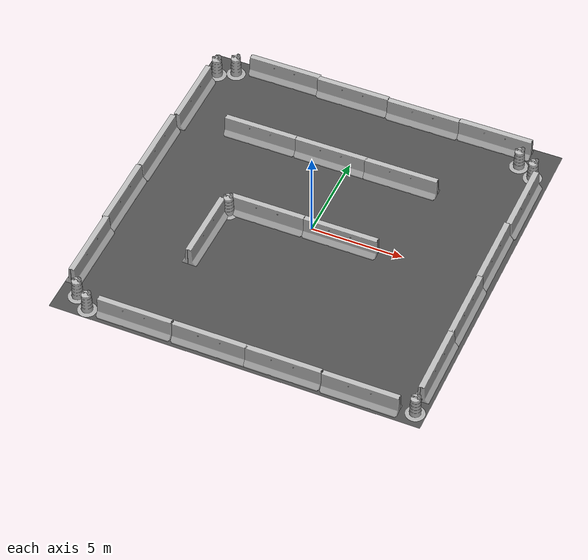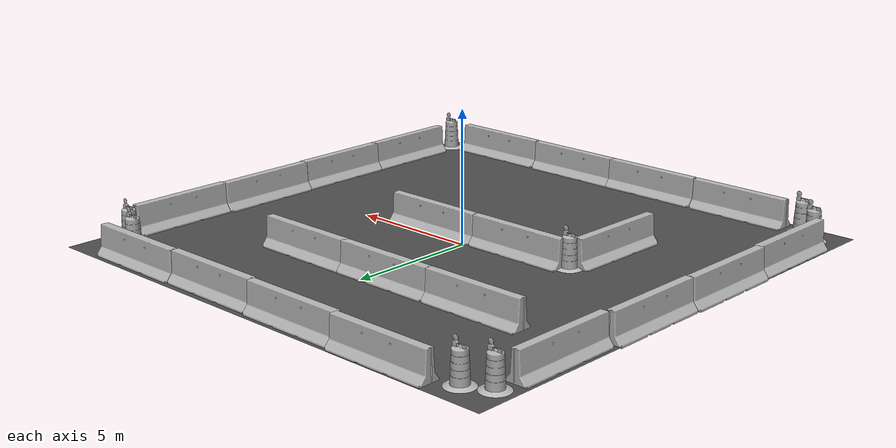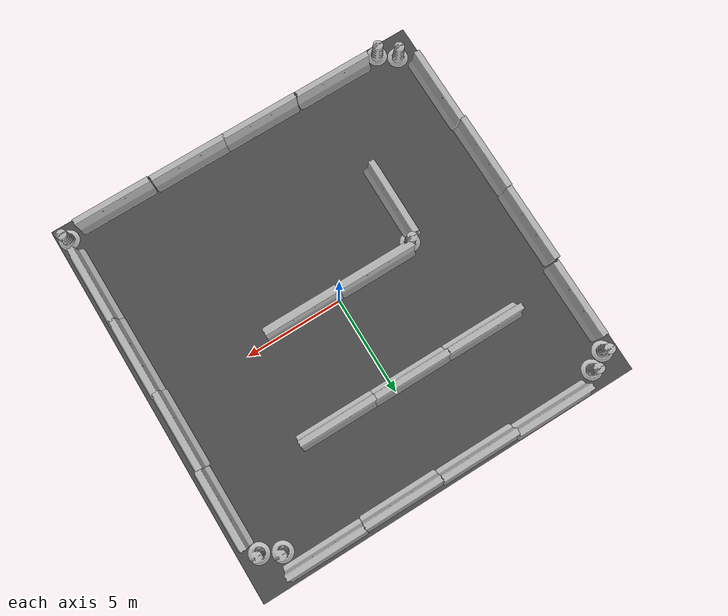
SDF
<sdf version="1.7">
 <world name="default">
  <light name="sun" type="directional">
   <pose>0 0 10 0 -0 0</pose>
   <diffuse>0.8 0.8 0.8 1</diffuse>
   <specular>0.2 0.2 0.2 1</specular>
   <attenuation>
    <range>1000</range>
    <constant>0.9</constant>
    <linear>0.01</linear>
    <quadratic>0.001</quadratic>
   </attenuation>
   <direction>-0.5 0.1 -0.9</direction>
   <spot><inner_angle>0</inner_angle><outer_angle>0</outer_angle><falloff>0</falloff></spot>
  </light>
  <gravity>0 0 -9.8</gravity>
  <magnetic_field>6e-06 2.3e-05 -4.2e-05</magnetic_field>
  <atmosphere type="adiabatic"/>
  <physics name="default_physics" default="0" type="ode">
   <max_step_size>0.001</max_step_size>
   <real_time_factor>1</real_time_factor>
   <real_time_update_rate>1000</real_time_update_rate>
  </physics>
  <scene><ambient>0.4 0.4 0.4 1</ambient><background>0.7 0.7 0.7 1</background><shadows>1</shadows></scene>
  <spherical_coordinates>
   <surface_model>EARTH_WGS84</surface_model>
   <latitude_deg>0</latitude_deg>
   <longitude_deg>0</longitude_deg>
   <elevation>0</elevation>
   <heading_deg>0</heading_deg>
  </spherical_coordinates>
  <model name="jersey_barrier">
   <static>1</static>
   <link name="link">
    <visual name="visual">
     <geometry><mesh><uri>model://jersey_barrier/meshes/jersey_barrier.dae</uri></mesh></geometry>
    </visual>
    <collision name="upright">
     <pose>0 0 0.5715 0 -0 0</pose>
     <geometry><box><size>4.06542 0.3063 1.143</size></box></geometry>
    </collision>
    <collision name="base">
     <pose>0 0 0.032258 0 -0 0</pose>
     <geometry><box><size>4.06542 0.8107 0.064516</size></box></geometry>
    </collision>
    <collision name="base2">
     <pose>0 0 0.1 0 -0 0</pose>
     <geometry><box><size>4.06542 0.65 0.1</size></box></geometry>
    </collision>
    <collision name="base3">
     <pose>0 0 0.2 0 -0 0</pose>
     <geometry><box><size>4.06542 0.5 0.1</size></box></geometry>
    </collision>
    <collision name="left-angle">
     <pose>0 -0.224 0.2401 0.9 -0 0</pose>
     <geometry><box><size>4.06542 0.5 0.064516</size></box></geometry>
    </collision>
    <collision name="right-angle">
     <pose>0 0.224 0.2401 -0.9 0 0</pose>
     <geometry><box><size>4.06542 0.5 0.064516</size></box></geometry>
    </collision>
   </link>
   <pose>-5.65677 9.4608 0 0 -0 0</pose>
  </model>
  <model name="jersey_barrier_clone">
   <static>1</static>
   <link name="link">
    <visual name="visual">
     <geometry><mesh><uri>model://jersey_barrier/meshes/jersey_barrier.dae</uri></mesh></geometry>
    </visual>
    <collision name="upright">
     <pose>0 0 0.5715 0 -0 0</pose>
     <geometry><box><size>4.06542 0.3063 1.143</size></box></geometry>
    </collision>
    <collision name="base">
     <pose>0 0 0.032258 0 -0 0</pose>
     <geometry><box><size>4.06542 0.8107 0.064516</size></box></geometry>
    </collision>
    <collision name="base2">
     <pose>0 0 0.1 0 -0 0</pose>
     <geometry><box><size>4.06542 0.65 0.1</size></box></geometry>
    </collision>
    <collision name="base3">
     <pose>0 0 0.2 0 -0 0</pose>
     <geometry><box><size>4.06542 0.5 0.1</size></box></geometry>
    </collision>
    <collision name="left-angle">
     <pose>0 -0.224 0.2401 0.9 -0 0</pose>
     <geometry><box><size>4.06542 0.5 0.064516</size></box></geometry>
    </collision>
    <collision name="right-angle">
     <pose>0 0.224 0.2401 -0.9 0 0</pose>
     <geometry><box><size>4.06542 0.5 0.064516</size></box></geometry>
    </collision>
   </link>
   <pose>-1.65987 9.36075 0 0 -0 0</pose>
  </model>
  <model name="jersey_barrier_clone_0">
   <static>1</static>
   <link name="link">
    <visual name="visual">
     <geometry><mesh><uri>model://jersey_barrier/meshes/jersey_barrier.dae</uri></mesh></geometry>
    </visual>
    <collision name="upright">
     <pose>0 0 0.5715 0 -0 0</pose>
     <geometry><box><size>4.06542 0.3063 1.143</size></box></geometry>
    </collision>
    <collision name="base">
     <pose>0 0 0.032258 0 -0 0</pose>
     <geometry><box><size>4.06542 0.8107 0.064516</size></box></geometry>
    </collision>
    <collision name="base2">
     <pose>0 0 0.1 0 -0 0</pose>
     <geometry><box><size>4.06542 0.65 0.1</size></box></geometry>
    </collision>
    <collision name="base3">
     <pose>0 0 0.2 0 -0 0</pose>
     <geometry><box><size>4.06542 0.5 0.1</size></box></geometry>
    </collision>
    <collision name="left-angle">
     <pose>0 -0.224 0.2401 0.9 -0 0</pose>
     <geometry><box><size>4.06542 0.5 0.064516</size></box></geometry>
    </collision>
    <collision name="right-angle">
     <pose>0 0.224 0.2401 -0.9 0 0</pose>
     <geometry><box><size>4.06542 0.5 0.064516</size></box></geometry>
    </collision>
   </link>
   <pose>2.39773 9.29085 0 0 -0 0</pose>
  </model>
  <model name="jersey_barrier_clone_1">
   <static>1</static>
   <link name="link">
    <visual name="visual">
     <geometry><mesh><uri>model://jersey_barrier/meshes/jersey_barrier.dae</uri></mesh></geometry>
    </visual>
    <collision name="upright">
     <pose>0 0 0.5715 0 -0 0</pose>
     <geometry><box><size>4.06542 0.3063 1.143</size></box></geometry>
    </collision>
    <collision name="base">
     <pose>0 0 0.032258 0 -0 0</pose>
     <geometry><box><size>4.06542 0.8107 0.064516</size></box></geometry>
    </collision>
    <collision name="base2">
     <pose>0 0 0.1 0 -0 0</pose>
     <geometry><box><size>4.06542 0.65 0.1</size></box></geometry>
    </collision>
    <collision name="base3">
     <pose>0 0 0.2 0 -0 0</pose>
     <geometry><box><size>4.06542 0.5 0.1</size></box></geometry>
    </collision>
    <collision name="left-angle">
     <pose>0 -0.224 0.2401 0.9 -0 0</pose>
     <geometry><box><size>4.06542 0.5 0.064516</size></box></geometry>
    </collision>
    <collision name="right-angle">
     <pose>0 0.224 0.2401 -0.9 0 0</pose>
     <geometry><box><size>4.06542 0.5 0.064516</size></box></geometry>
    </collision>
   </link>
   <pose>6.45464 9.33993 0 0 -0 0</pose>
  </model>
  <model name="jersey_barrier_clone_3">
   <static>1</static>
   <link name="link">
    <visual name="visual">
     <geometry><mesh><uri>model://jersey_barrier/meshes/jersey_barrier.dae</uri></mesh></geometry>
    </visual>
    <collision name="upright">
     <pose>0 0 0.5715 0 -0 0</pose>
     <geometry><box><size>4.06542 0.3063 1.143</size></box></geometry>
    </collision>
    <collision name="base">
     <pose>0 0 0.032258 0 -0 0</pose>
     <geometry><box><size>4.06542 0.8107 0.064516</size></box></geometry>
    </collision>
    <collision name="base2">
     <pose>0 0 0.1 0 -0 0</pose>
     <geometry><box><size>4.06542 0.65 0.1</size></box></geometry>
    </collision>
    <collision name="base3">
     <pose>0 0 0.2 0 -0 0</pose>
     <geometry><box><size>4.06542 0.5 0.1</size></box></geometry>
    </collision>
    <collision name="left-angle">
     <pose>0 -0.224 0.2401 0.9 -0 0</pose>
     <geometry><box><size>4.06542 0.5 0.064516</size></box></geometry>
    </collision>
    <collision name="right-angle">
     <pose>0 0.224 0.2401 -0.9 0 0</pose>
     <geometry><box><size>4.06542 0.5 0.064516</size></box></geometry>
    </collision>
   </link>
   <pose>9.44656 5.35522 0 0 0 -1.56865</pose>
  </model>
  <model name="jersey_barrier_clone_3_clone">
   <static>1</static>
   <link name="link">
    <visual name="visual">
     <geometry><mesh><uri>model://jersey_barrier/meshes/jersey_barrier.dae</uri></mesh></geometry>
    </visual>
    <collision name="upright">
     <pose>0 0 0.5715 0 -0 0</pose>
     <geometry><box><size>4.06542 0.3063 1.143</size></box></geometry>
    </collision>
    <collision name="base">
     <pose>0 0 0.032258 0 -0 0</pose>
     <geometry><box><size>4.06542 0.8107 0.064516</size></box></geometry>
    </collision>
    <collision name="base2">
     <pose>0 0 0.1 0 -0 0</pose>
     <geometry><box><size>4.06542 0.65 0.1</size></box></geometry>
    </collision>
    <collision name="base3">
     <pose>0 0 0.2 0 -0 0</pose>
     <geometry><box><size>4.06542 0.5 0.1</size></box></geometry>
    </collision>
    <collision name="left-angle">
     <pose>0 -0.224 0.2401 0.9 -0 0</pose>
     <geometry><box><size>4.06542 0.5 0.064516</size></box></geometry>
    </collision>
    <collision name="right-angle">
     <pose>0 0.224 0.2401 -0.9 0 0</pose>
     <geometry><box><size>4.06542 0.5 0.064516</size></box></geometry>
    </collision>
   </link>
   <pose>9.3727 1.33119 0 0 0 -1.56865</pose>
  </model>
  <model name="jersey_barrier_clone_3_clone_0">
   <static>1</static>
   <link name="link">
    <visual name="visual">
     <geometry><mesh><uri>model://jersey_barrier/meshes/jersey_barrier.dae</uri></mesh></geometry>
    </visual>
    <collision name="upright">
     <pose>0 0 0.5715 0 -0 0</pose>
     <geometry><box><size>4.06542 0.3063 1.143</size></box></geometry>
    </collision>
    <collision name="base">
     <pose>0 0 0.032258 0 -0 0</pose>
     <geometry><box><size>4.06542 0.8107 0.064516</size></box></geometry>
    </collision>
    <collision name="base2">
     <pose>0 0 0.1 0 -0 0</pose>
     <geometry><box><size>4.06542 0.65 0.1</size></box></geometry>
    </collision>
    <collision name="base3">
     <pose>0 0 0.2 0 -0 0</pose>
     <geometry><box><size>4.06542 0.5 0.1</size></box></geometry>
    </collision>
    <collision name="left-angle">
     <pose>0 -0.224 0.2401 0.9 -0 0</pose>
     <geometry><box><size>4.06542 0.5 0.064516</size></box></geometry>
    </collision>
    <collision name="right-angle">
     <pose>0 0.224 0.2401 -0.9 0 0</pose>
     <geometry><box><size>4.06542 0.5 0.064516</size></box></geometry>
    </collision>
   </link>
   <pose>9.4315 -2.6268 0 0 0 -1.56865</pose>
  </model>
  <model name="jersey_barrier_clone_3_clone_1">
   <static>1</static>
   <link name="link">
    <visual name="visual">
     <geometry><mesh><uri>model://jersey_barrier/meshes/jersey_barrier.dae</uri></mesh></geometry>
    </visual>
    <collision name="upright">
     <pose>0 0 0.5715 0 -0 0</pose>
     <geometry><box><size>4.06542 0.3063 1.143</size></box></geometry>
    </collision>
    <collision name="base">
     <pose>0 0 0.032258 0 -0 0</pose>
     <geometry><box><size>4.06542 0.8107 0.064516</size></box></geometry>
    </collision>
    <collision name="base2">
     <pose>0 0 0.1 0 -0 0</pose>
     <geometry><box><size>4.06542 0.65 0.1</size></box></geometry>
    </collision>
    <collision name="base3">
     <pose>0 0 0.2 0 -0 0</pose>
     <geometry><box><size>4.06542 0.5 0.1</size></box></geometry>
    </collision>
    <collision name="left-angle">
     <pose>0 -0.224 0.2401 0.9 -0 0</pose>
     <geometry><box><size>4.06542 0.5 0.064516</size></box></geometry>
    </collision>
    <collision name="right-angle">
     <pose>0 0.224 0.2401 -0.9 0 0</pose>
     <geometry><box><size>4.06542 0.5 0.064516</size></box></geometry>
    </collision>
   </link>
   <pose>9.44969 -6.53485 0 0 0 -1.56865</pose>
  </model>
  <model name="jersey_barrier_clone_2_clone">
   <static>1</static>
   <link name="link">
    <visual name="visual">
     <geometry><mesh><uri>model://jersey_barrier/meshes/jersey_barrier.dae</uri></mesh></geometry>
    </visual>
    <collision name="upright">
     <pose>0 0 0.5715 0 -0 0</pose>
     <geometry><box><size>4.06542 0.3063 1.143</size></box></geometry>
    </collision>
    <collision name="base">
     <pose>0 0 0.032258 0 -0 0</pose>
     <geometry><box><size>4.06542 0.8107 0.064516</size></box></geometry>
    </collision>
    <collision name="base2">
     <pose>0 0 0.1 0 -0 0</pose>
     <geometry><box><size>4.06542 0.65 0.1</size></box></geometry>
    </collision>
    <collision name="base3">
     <pose>0 0 0.2 0 -0 0</pose>
     <geometry><box><size>4.06542 0.5 0.1</size></box></geometry>
    </collision>
    <collision name="left-angle">
     <pose>0 -0.224 0.2401 0.9 -0 0</pose>
     <geometry><box><size>4.06542 0.5 0.064516</size></box></geometry>
    </collision>
    <collision name="right-angle">
     <pose>0 0.224 0.2401 -0.9 0 0</pose>
     <geometry><box><size>4.06542 0.5 0.064516</size></box></geometry>
    </collision>
   </link>
   <pose>6.70657 -9.54347 0 0 -0 0</pose>
  </model>
  <model name="jersey_barrier_clone_2_clone_0">
   <static>1</static>
   <link name="link">
    <visual name="visual">
     <geometry><mesh><uri>model://jersey_barrier/meshes/jersey_barrier.dae</uri></mesh></geometry>
    </visual>
    <collision name="upright">
     <pose>0 0 0.5715 0 -0 0</pose>
     <geometry><box><size>4.06542 0.3063 1.143</size></box></geometry>
    </collision>
    <collision name="base">
     <pose>0 0 0.032258 0 -0 0</pose>
     <geometry><box><size>4.06542 0.8107 0.064516</size></box></geometry>
    </collision>
    <collision name="base2">
     <pose>0 0 0.1 0 -0 0</pose>
     <geometry><box><size>4.06542 0.65 0.1</size></box></geometry>
    </collision>
    <collision name="base3">
     <pose>0 0 0.2 0 -0 0</pose>
     <geometry><box><size>4.06542 0.5 0.1</size></box></geometry>
    </collision>
    <collision name="left-angle">
     <pose>0 -0.224 0.2401 0.9 -0 0</pose>
     <geometry><box><size>4.06542 0.5 0.064516</size></box></geometry>
    </collision>
    <collision name="right-angle">
     <pose>0 0.224 0.2401 -0.9 0 0</pose>
     <geometry><box><size>4.06542 0.5 0.064516</size></box></geometry>
    </collision>
   </link>
   <pose>2.59616 -9.50928 0 0 -0 0</pose>
  </model>
  <model name="jersey_barrier_clone_2_clone_1">
   <static>1</static>
   <link name="link">
    <visual name="visual">
     <geometry><mesh><uri>model://jersey_barrier/meshes/jersey_barrier.dae</uri></mesh></geometry>
    </visual>
    <collision name="upright">
     <pose>0 0 0.5715 0 -0 0</pose>
     <geometry><box><size>4.06542 0.3063 1.143</size></box></geometry>
    </collision>
    <collision name="base">
     <pose>0 0 0.032258 0 -0 0</pose>
     <geometry><box><size>4.06542 0.8107 0.064516</size></box></geometry>
    </collision>
    <collision name="base2">
     <pose>0 0 0.1 0 -0 0</pose>
     <geometry><box><size>4.06542 0.65 0.1</size></box></geometry>
    </collision>
    <collision name="base3">
     <pose>0 0 0.2 0 -0 0</pose>
     <geometry><box><size>4.06542 0.5 0.1</size></box></geometry>
    </collision>
    <collision name="left-angle">
     <pose>0 -0.224 0.2401 0.9 -0 0</pose>
     <geometry><box><size>4.06542 0.5 0.064516</size></box></geometry>
    </collision>
    <collision name="right-angle">
     <pose>0 0.224 0.2401 -0.9 0 0</pose>
     <geometry><box><size>4.06542 0.5 0.064516</size></box></geometry>
    </collision>
   </link>
   <pose>-1.33414 -9.50852 0 0 -0 0</pose>
  </model>
  <model name="jersey_barrier_clone_2_clone_2">
   <static>1</static>
   <link name="link">
    <visual name="visual">
     <geometry><mesh><uri>model://jersey_barrier/meshes/jersey_barrier.dae</uri></mesh></geometry>
    </visual>
    <collision name="upright">
     <pose>0 0 0.5715 0 -0 0</pose>
     <geometry><box><size>4.06542 0.3063 1.143</size></box></geometry>
    </collision>
    <collision name="base">
     <pose>0 0 0.032258 0 -0 0</pose>
     <geometry><box><size>4.06542 0.8107 0.064516</size></box></geometry>
    </collision>
    <collision name="base2">
     <pose>0 0 0.1 0 -0 0</pose>
     <geometry><box><size>4.06542 0.65 0.1</size></box></geometry>
    </collision>
    <collision name="base3">
     <pose>0 0 0.2 0 -0 0</pose>
     <geometry><box><size>4.06542 0.5 0.1</size></box></geometry>
    </collision>
    <collision name="left-angle">
     <pose>0 -0.224 0.2401 0.9 -0 0</pose>
     <geometry><box><size>4.06542 0.5 0.064516</size></box></geometry>
    </collision>
    <collision name="right-angle">
     <pose>0 0.224 0.2401 -0.9 0 0</pose>
     <geometry><box><size>4.06542 0.5 0.064516</size></box></geometry>
    </collision>
   </link>
   <pose>-5.44605 -9.49634 0 0 -0 0</pose>
  </model>
  <model name="jersey_barrier_clone_3_clone_1_clone">
   <static>1</static>
   <link name="link">
    <visual name="visual">
     <geometry><mesh><uri>model://jersey_barrier/meshes/jersey_barrier.dae</uri></mesh></geometry>
    </visual>
    <collision name="upright">
     <pose>0 0 0.5715 0 -0 0</pose>
     <geometry><box><size>4.06542 0.3063 1.143</size></box></geometry>
    </collision>
    <collision name="base">
     <pose>0 0 0.032258 0 -0 0</pose>
     <geometry><box><size>4.06542 0.8107 0.064516</size></box></geometry>
    </collision>
    <collision name="base2">
     <pose>0 0 0.1 0 -0 0</pose>
     <geometry><box><size>4.06542 0.65 0.1</size></box></geometry>
    </collision>
    <collision name="base3">
     <pose>0 0 0.2 0 -0 0</pose>
     <geometry><box><size>4.06542 0.5 0.1</size></box></geometry>
    </collision>
    <collision name="left-angle">
     <pose>0 -0.224 0.2401 0.9 -0 0</pose>
     <geometry><box><size>4.06542 0.5 0.064516</size></box></geometry>
    </collision>
    <collision name="right-angle">
     <pose>0 0.224 0.2401 -0.9 0 0</pose>
     <geometry><box><size>4.06542 0.5 0.064516</size></box></geometry>
    </collision>
   </link>
   <pose>-9.54289 -6.33149 0 0 0 -1.56865</pose>
  </model>
  <model name="jersey_barrier_clone_3_clone_1_clone_0">
   <static>1</static>
   <link name="link">
    <visual name="visual">
     <geometry><mesh><uri>model://jersey_barrier/meshes/jersey_barrier.dae</uri></mesh></geometry>
    </visual>
    <collision name="upright">
     <pose>0 0 0.5715 0 -0 0</pose>
     <geometry><box><size>4.06542 0.3063 1.143</size></box></geometry>
    </collision>
    <collision name="base">
     <pose>0 0 0.032258 0 -0 0</pose>
     <geometry><box><size>4.06542 0.8107 0.064516</size></box></geometry>
    </collision>
    <collision name="base2">
     <pose>0 0 0.1 0 -0 0</pose>
     <geometry><box><size>4.06542 0.65 0.1</size></box></geometry>
    </collision>
    <collision name="base3">
     <pose>0 0 0.2 0 -0 0</pose>
     <geometry><box><size>4.06542 0.5 0.1</size></box></geometry>
    </collision>
    <collision name="left-angle">
     <pose>0 -0.224 0.2401 0.9 -0 0</pose>
     <geometry><box><size>4.06542 0.5 0.064516</size></box></geometry>
    </collision>
    <collision name="right-angle">
     <pose>0 0.224 0.2401 -0.9 0 0</pose>
     <geometry><box><size>4.06542 0.5 0.064516</size></box></geometry>
    </collision>
   </link>
   <pose>-9.6221 -2.35336 0 0 0 -1.56865</pose>
  </model>
  <model name="jersey_barrier_clone_3_clone_1_clone_1">
   <static>1</static>
   <link name="link">
    <visual name="visual">
     <geometry><mesh><uri>model://jersey_barrier/meshes/jersey_barrier.dae</uri></mesh></geometry>
    </visual>
    <collision name="upright">
     <pose>0 0 0.5715 0 -0 0</pose>
     <geometry><box><size>4.06542 0.3063 1.143</size></box></geometry>
    </collision>
    <collision name="base">
     <pose>0 0 0.032258 0 -0 0</pose>
     <geometry><box><size>4.06542 0.8107 0.064516</size></box></geometry>
    </collision>
    <collision name="base2">
     <pose>0 0 0.1 0 -0 0</pose>
     <geometry><box><size>4.06542 0.65 0.1</size></box></geometry>
    </collision>
    <collision name="base3">
     <pose>0 0 0.2 0 -0 0</pose>
     <geometry><box><size>4.06542 0.5 0.1</size></box></geometry>
    </collision>
    <collision name="left-angle">
     <pose>0 -0.224 0.2401 0.9 -0 0</pose>
     <geometry><box><size>4.06542 0.5 0.064516</size></box></geometry>
    </collision>
    <collision name="right-angle">
     <pose>0 0.224 0.2401 -0.9 0 0</pose>
     <geometry><box><size>4.06542 0.5 0.064516</size></box></geometry>
    </collision>
   </link>
   <pose>-9.58952 1.69745 0 0 0 -1.56865</pose>
  </model>
  <model name="jersey_barrier_clone_3_clone_1_clone_2">
   <static>1</static>
   <link name="link">
    <visual name="visual">
     <geometry><mesh><uri>model://jersey_barrier/meshes/jersey_barrier.dae</uri></mesh></geometry>
    </visual>
    <collision name="upright">
     <pose>0 0 0.5715 0 -0 0</pose>
     <geometry><box><size>4.06542 0.3063 1.143</size></box></geometry>
    </collision>
    <collision name="base">
     <pose>0 0 0.032258 0 -0 0</pose>
     <geometry><box><size>4.06542 0.8107 0.064516</size></box></geometry>
    </collision>
    <collision name="base2">
     <pose>0 0 0.1 0 -0 0</pose>
     <geometry><box><size>4.06542 0.65 0.1</size></box></geometry>
    </collision>
    <collision name="base3">
     <pose>0 0 0.2 0 -0 0</pose>
     <geometry><box><size>4.06542 0.5 0.1</size></box></geometry>
    </collision>
    <collision name="left-angle">
     <pose>0 -0.224 0.2401 0.9 -0 0</pose>
     <geometry><box><size>4.06542 0.5 0.064516</size></box></geometry>
    </collision>
    <collision name="right-angle">
     <pose>0 0.224 0.2401 -0.9 0 0</pose>
     <geometry><box><size>4.06542 0.5 0.064516</size></box></geometry>
    </collision>
   </link>
   <pose>-9.44715 5.83721 0 0 0 -1.56865</pose>
  </model>
  <model name="Construction Barrel">
   <link name="link">
    <inertial>
     <pose>0 0 0.4 0 -0 0</pose>
     <mass>500</mass>
     <inertia><ixx>51.2096</ixx><iyy>51.2096</iyy><izz>25</izz><ixy>0</ixy><ixz>0</ixz><iyz>0</iyz></inertia>
    </inertial>
    <collision name="collision">
     <geometry><mesh><uri>model://construction_barrel/meshes/construction_barrel.dae</uri></mesh></geometry>
    </collision>
    <visual name="visual">
     <geometry><mesh><uri>model://construction_barrel/meshes/construction_barrel.dae</uri></mesh></geometry>
    </visual>
   </link>
   <pose>9.08872 7.89727 0.002659 7e-06 -4e-06 -0.004779</pose>
  </model>
  <model name="Construction Barrel_0">
   <link name="link">
    <inertial>
     <pose>0 0 0.4 0 -0 0</pose>
     <mass>500</mass>
     <inertia><ixx>51.2096</ixx><iyy>51.2096</iyy><izz>25</izz><ixy>0</ixy><ixz>0</ixz><iyz>0</iyz></inertia>
    </inertial>
    <collision name="collision">
     <geometry><mesh><uri>model://construction_barrel/meshes/construction_barrel.dae</uri></mesh></geometry>
    </collision>
    <visual name="visual">
     <geometry><mesh><uri>model://construction_barrel/meshes/construction_barrel.dae</uri></mesh></geometry>
    </visual>
   </link>
   <pose>8.142 8.39834 0.002662 1e-06 -2e-06 0.008659</pose>
  </model>
  <model name="Construction Barrel_1">
   <link name="link">
    <inertial>
     <pose>0 0 0.4 0 -0 0</pose>
     <mass>500</mass>
     <inertia><ixx>51.2096</ixx><iyy>51.2096</iyy><izz>25</izz><ixy>0</ixy><ixz>0</ixz><iyz>0</iyz></inertia>
    </inertial>
    <collision name="collision">
     <geometry><mesh><uri>model://construction_barrel/meshes/construction_barrel.dae</uri></mesh></geometry>
    </collision>
    <visual name="visual">
     <geometry><mesh><uri>model://construction_barrel/meshes/construction_barrel.dae</uri></mesh></geometry>
    </visual>
   </link>
   <pose>-9.25632 8.46597 0.002663 -1e-06 -1e-06 -2.5e-05</pose>
  </model>
  <model name="Construction Barrel_2">
   <link name="link">
    <inertial>
     <pose>0 0 0.4 0 -0 0</pose>
     <mass>500</mass>
     <inertia><ixx>51.2096</ixx><iyy>51.2096</iyy><izz>25</izz><ixy>0</ixy><ixz>0</ixz><iyz>0</iyz></inertia>
    </inertial>
    <collision name="collision">
     <geometry><mesh><uri>model://construction_barrel/meshes/construction_barrel.dae</uri></mesh></geometry>
    </collision>
    <visual name="visual">
     <geometry><mesh><uri>model://construction_barrel/meshes/construction_barrel.dae</uri></mesh></geometry>
    </visual>
   </link>
   <pose>-8.34413 8.93716 0.002662 3e-06 2e-06 -0.000472</pose>
  </model>
  <model name="Construction Barrel_3">
   <link name="link">
    <inertial>
     <pose>0 0 0.4 0 -0 0</pose>
     <mass>500</mass>
     <inertia><ixx>51.2096</ixx><iyy>51.2096</iyy><izz>25</izz><ixy>0</ixy><ixz>0</ixz><iyz>0</iyz></inertia>
    </inertial>
    <collision name="collision">
     <geometry><mesh><uri>model://construction_barrel/meshes/construction_barrel.dae</uri></mesh></geometry>
    </collision>
    <visual name="visual">
     <geometry><mesh><uri>model://construction_barrel/meshes/construction_barrel.dae</uri></mesh></geometry>
    </visual>
   </link>
   <pose>9.46993 -9.31237 0.002662 -1e-06 -4e-06 0.001317</pose>
  </model>
  <model name="Construction Barrel_4">
   <link name="link">
    <inertial>
     <pose>0 0 0.4 0 -0 0</pose>
     <mass>500</mass>
     <inertia><ixx>51.2096</ixx><iyy>51.2096</iyy><izz>25</izz><ixy>0</ixy><ixz>0</ixz><iyz>0</iyz></inertia>
    </inertial>
    <collision name="collision">
     <geometry><mesh><uri>model://construction_barrel/meshes/construction_barrel.dae</uri></mesh></geometry>
    </collision>
    <visual name="visual">
     <geometry><mesh><uri>model://construction_barrel/meshes/construction_barrel.dae</uri></mesh></geometry>
    </visual>
   </link>
   <pose>-8.09864 -9.57689 0.002654 -6e-06 -7e-06 0.03146</pose>
  </model>
  <model name="Construction Barrel_5">
   <link name="link">
    <inertial>
     <pose>0 0 0.4 0 -0 0</pose>
     <mass>500</mass>
     <inertia><ixx>51.2096</ixx><iyy>51.2096</iyy><izz>25</izz><ixy>0</ixy><ixz>0</ixz><iyz>0</iyz></inertia>
    </inertial>
    <collision name="collision">
     <geometry><mesh><uri>model://construction_barrel/meshes/construction_barrel.dae</uri></mesh></geometry>
    </collision>
    <visual name="visual">
     <geometry><mesh><uri>model://construction_barrel/meshes/construction_barrel.dae</uri></mesh></geometry>
    </visual>
   </link>
   <pose>-8.93902 -8.96146 0.002663 2e-06 2e-06 -0.000828</pose>
  </model>
  <model name="jersey_barrier_0">
   <static>1</static>
   <link name="link">
    <visual name="visual">
     <geometry><mesh><uri>model://jersey_barrier/meshes/jersey_barrier.dae</uri></mesh></geometry>
    </visual>
    <collision name="upright">
     <pose>0 0 0.5715 0 -0 0</pose>
     <geometry><box><size>4.06542 0.3063 1.143</size></box></geometry>
    </collision>
    <collision name="base">
     <pose>0 0 0.032258 0 -0 0</pose>
     <geometry><box><size>4.06542 0.8107 0.064516</size></box></geometry>
    </collision>
    <collision name="base2">
     <pose>0 0 0.1 0 -0 0</pose>
     <geometry><box><size>4.06542 0.65 0.1</size></box></geometry>
    </collision>
    <collision name="base3">
     <pose>0 0 0.2 0 -0 0</pose>
     <geometry><box><size>4.06542 0.5 0.1</size></box></geometry>
    </collision>
    <collision name="left-angle">
     <pose>0 -0.224 0.2401 0.9 -0 0</pose>
     <geometry><box><size>4.06542 0.5 0.064516</size></box></geometry>
    </collision>
    <collision name="right-angle">
     <pose>0 0.224 0.2401 -0.9 0 0</pose>
     <geometry><box><size>4.06542 0.5 0.064516</size></box></geometry>
    </collision>
   </link>
   <pose>-4.97429 4.73074 0 0 -0 0</pose>
  </model>
  <model name="jersey_barrier_0_clone">
   <static>1</static>
   <link name="link">
    <visual name="visual">
     <geometry><mesh><uri>model://jersey_barrier/meshes/jersey_barrier.dae</uri></mesh></geometry>
    </visual>
    <collision name="upright">
     <pose>0 0 0.5715 0 -0 0</pose>
     <geometry><box><size>4.06542 0.3063 1.143</size></box></geometry>
    </collision>
    <collision name="base">
     <pose>0 0 0.032258 0 -0 0</pose>
     <geometry><box><size>4.06542 0.8107 0.064516</size></box></geometry>
    </collision>
    <collision name="base2">
     <pose>0 0 0.1 0 -0 0</pose>
     <geometry><box><size>4.06542 0.65 0.1</size></box></geometry>
    </collision>
    <collision name="base3">
     <pose>0 0 0.2 0 -0 0</pose>
     <geometry><box><size>4.06542 0.5 0.1</size></box></geometry>
    </collision>
    <collision name="left-angle">
     <pose>0 -0.224 0.2401 0.9 -0 0</pose>
     <geometry><box><size>4.06542 0.5 0.064516</size></box></geometry>
    </collision>
    <collision name="right-angle">
     <pose>0 0.224 0.2401 -0.9 0 0</pose>
     <geometry><box><size>4.06542 0.5 0.064516</size></box></geometry>
    </collision>
   </link>
   <pose>-0.93635 4.73131 0 0 -0 0</pose>
  </model>
  <model name="jersey_barrier_0_clone_0">
   <static>1</static>
   <link name="link">
    <visual name="visual">
     <geometry><mesh><uri>model://jersey_barrier/meshes/jersey_barrier.dae</uri></mesh></geometry>
    </visual>
    <collision name="upright">
     <pose>0 0 0.5715 0 -0 0</pose>
     <geometry><box><size>4.06542 0.3063 1.143</size></box></geometry>
    </collision>
    <collision name="base">
     <pose>0 0 0.032258 0 -0 0</pose>
     <geometry><box><size>4.06542 0.8107 0.064516</size></box></geometry>
    </collision>
    <collision name="base2">
     <pose>0 0 0.1 0 -0 0</pose>
     <geometry><box><size>4.06542 0.65 0.1</size></box></geometry>
    </collision>
    <collision name="base3">
     <pose>0 0 0.2 0 -0 0</pose>
     <geometry><box><size>4.06542 0.5 0.1</size></box></geometry>
    </collision>
    <collision name="left-angle">
     <pose>0 -0.224 0.2401 0.9 -0 0</pose>
     <geometry><box><size>4.06542 0.5 0.064516</size></box></geometry>
    </collision>
    <collision name="right-angle">
     <pose>0 0.224 0.2401 -0.9 0 0</pose>
     <geometry><box><size>4.06542 0.5 0.064516</size></box></geometry>
    </collision>
   </link>
   <pose>2.99134 4.7208 0 0 -0 0</pose>
  </model>
  <model name="jersey_barrier_0_clone_1">
   <static>1</static>
   <link name="link">
    <visual name="visual">
     <geometry><mesh><uri>model://jersey_barrier/meshes/jersey_barrier.dae</uri></mesh></geometry>
    </visual>
    <collision name="upright">
     <pose>0 0 0.5715 0 -0 0</pose>
     <geometry><box><size>4.06542 0.3063 1.143</size></box></geometry>
    </collision>
    <collision name="base">
     <pose>0 0 0.032258 0 -0 0</pose>
     <geometry><box><size>4.06542 0.8107 0.064516</size></box></geometry>
    </collision>
    <collision name="base2">
     <pose>0 0 0.1 0 -0 0</pose>
     <geometry><box><size>4.06542 0.65 0.1</size></box></geometry>
    </collision>
    <collision name="base3">
     <pose>0 0 0.2 0 -0 0</pose>
     <geometry><box><size>4.06542 0.5 0.1</size></box></geometry>
    </collision>
    <collision name="left-angle">
     <pose>0 -0.224 0.2401 0.9 -0 0</pose>
     <geometry><box><size>4.06542 0.5 0.064516</size></box></geometry>
    </collision>
    <collision name="right-angle">
     <pose>0 0.224 0.2401 -0.9 0 0</pose>
     <geometry><box><size>4.06542 0.5 0.064516</size></box></geometry>
    </collision>
   </link>
   <pose>-2.28125 -0.396276 0 0 -0 0</pose>
  </model>
  <model name="jersey_barrier_0_clone_1_clone">
   <static>1</static>
   <link name="link">
    <visual name="visual">
     <geometry><mesh><uri>model://jersey_barrier/meshes/jersey_barrier.dae</uri></mesh></geometry>
    </visual>
    <collision name="upright">
     <pose>0 0 0.5715 0 -0 0</pose>
     <geometry><box><size>4.06542 0.3063 1.143</size></box></geometry>
    </collision>
    <collision name="base">
     <pose>0 0 0.032258 0 -0 0</pose>
     <geometry><box><size>4.06542 0.8107 0.064516</size></box></geometry>
    </collision>
    <collision name="base2">
     <pose>0 0 0.1 0 -0 0</pose>
     <geometry><box><size>4.06542 0.65 0.1</size></box></geometry>
    </collision>
    <collision name="base3">
     <pose>0 0 0.2 0 -0 0</pose>
     <geometry><box><size>4.06542 0.5 0.1</size></box></geometry>
    </collision>
    <collision name="left-angle">
     <pose>0 -0.224 0.2401 0.9 -0 0</pose>
     <geometry><box><size>4.06542 0.5 0.064516</size></box></geometry>
    </collision>
    <collision name="right-angle">
     <pose>0 0.224 0.2401 -0.9 0 0</pose>
     <geometry><box><size>4.06542 0.5 0.064516</size></box></geometry>
    </collision>
   </link>
   <pose>1.76519 -0.393386 0 0 -0 0</pose>
  </model>
  <model name="jersey_barrier_0_clone_1_clone_clone">
   <static>1</static>
   <link name="link">
    <visual name="visual">
     <geometry><mesh><uri>model://jersey_barrier/meshes/jersey_barrier.dae</uri></mesh></geometry>
    </visual>
    <collision name="upright">
     <pose>0 0 0.5715 0 -0 0</pose>
     <geometry><box><size>4.06542 0.3063 1.143</size></box></geometry>
    </collision>
    <collision name="base">
     <pose>0 0 0.032258 0 -0 0</pose>
     <geometry><box><size>4.06542 0.8107 0.064516</size></box></geometry>
    </collision>
    <collision name="base2">
     <pose>0 0 0.1 0 -0 0</pose>
     <geometry><box><size>4.06542 0.65 0.1</size></box></geometry>
    </collision>
    <collision name="base3">
     <pose>0 0 0.2 0 -0 0</pose>
     <geometry><box><size>4.06542 0.5 0.1</size></box></geometry>
    </collision>
    <collision name="left-angle">
     <pose>0 -0.224 0.2401 0.9 -0 0</pose>
     <geometry><box><size>4.06542 0.5 0.064516</size></box></geometry>
    </collision>
    <collision name="right-angle">
     <pose>0 0.224 0.2401 -0.9 0 0</pose>
     <geometry><box><size>4.06542 0.5 0.064516</size></box></geometry>
    </collision>
   </link>
   <pose>-4.70694 -2.78766 0 0 0 -1.58136</pose>
  </model>
  <model name="Construction Barrel_6">
   <link name="link">
    <inertial>
     <pose>0 0 0.4 0 -0 0</pose>
     <mass>500</mass>
     <inertia><ixx>51.2096</ixx><iyy>51.2096</iyy><izz>25</izz><ixy>0</ixy><ixz>0</ixz><iyz>0</iyz></inertia>
    </inertial>
    <collision name="collision">
     <geometry><mesh><uri>model://construction_barrel/meshes/construction_barrel.dae</uri></mesh></geometry>
    </collision>
    <visual name="visual">
     <geometry><mesh><uri>model://construction_barrel/meshes/construction_barrel.dae</uri></mesh></geometry>
    </visual>
   </link>
   <pose>-4.39733 -0.664813 -0.00069 -0.00351 -0.001675 0.000546</pose>
  </model>
  <model name="asphalt_plane">
   <link name="link">
    <inertial>
     <mass>1</mass>
     <inertia><ixx>1</ixx><ixy>0</ixy><ixz>0</ixz><iyy>1</iyy><iyz>0</iyz><izz>1</izz></inertia>
    </inertial>
    <visual name="visual">
     <cast_shadows>0</cast_shadows>
     <geometry><box><size>20 20 1e-06</size></box></geometry>
     <material>
      <script>
       <uri>model://asphalt_plane/materials/scripts</uri>
       <uri>model://asphalt_plane/materials/textures</uri>
       <name>vrc/asphalt</name>
      </script>
      <shader type="pixel"><normal_map>__default__</normal_map></shader>
      <ambient>0.5 0.5 0.5 1</ambient>
      <diffuse>0.5 0.5 0.5 1</diffuse>
      <specular>0.2 0.2 0.2 1</specular>
      <emissive>0 0 0 1</emissive>
     </material>
    </visual>
    <collision name="collision">
     <geometry><box><size>20 20 1e-06</size></box></geometry>
     <surface>
      <friction>
       <ode><mu>1</mu><mu2>1</mu2><fdir1>0 0 0</fdir1><slip1>0</slip1><slip2>0</slip2></ode>
       <torsional>
        <coefficient>1</coefficient>
        <patch_radius>0</patch_radius>
        <surface_radius>0</surface_radius>
        <use_patch_radius>1</use_patch_radius>
        <ode><slip>0</slip></ode>
       </torsional>
      </friction>
      <bounce><restitution_coefficient>0</restitution_coefficient><threshold>1e+06</threshold></bounce>
      <contact>
       <collide_without_contact>0</collide_without_contact>
       <collide_without_contact_bitmask>1</collide_without_contact_bitmask>
       <collide_bitmask>1</collide_bitmask>
       <ode>
        <soft_cfm>0</soft_cfm>
        <soft_erp>0.2</soft_erp>
        <kp>1e+13</kp>
        <kd>1</kd>
        <max_vel>0.01</max_vel>
        <min_depth>0</min_depth>
       </ode>
       <bullet>
        <split_impulse>1</split_impulse>
        <split_impulse_penetration_threshold>-0.01</split_impulse_penetration_threshold>
        <soft_cfm>0</soft_cfm>
        <soft_erp>0.2</soft_erp>
        <kp>1e+13</kp>
        <kd>1</kd>
       </bullet>
      </contact>
     </surface>
    </collision>
   </link>
   <static>1</static>
   <pose>0.027354 -0.102163 0.023 0 -0 0</pose>
  </model>
 </world>
</sdf>
